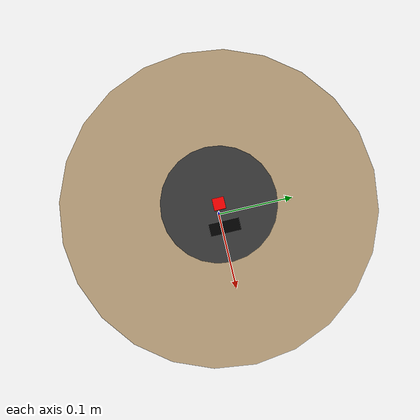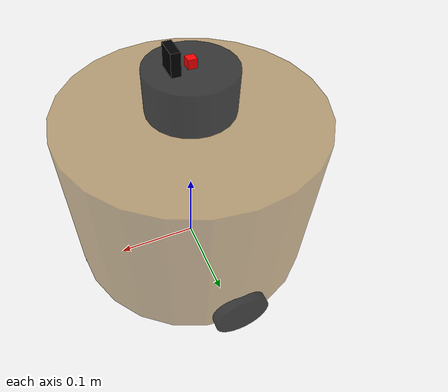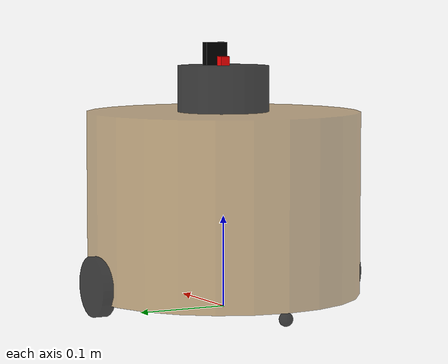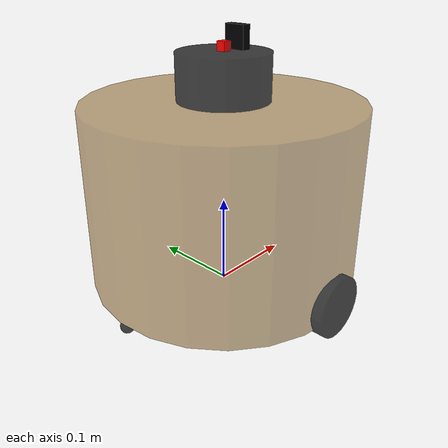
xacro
<robot name="diff_car_laser_3d"
  xmlns:xacro="http://wiki.ros.org/xacro">
  <xacro:include filename="head.xacro" />
  <xacro:include filename="base.xacro" />
  <xacro:include filename="laser.xacro" />
  <xacro:include filename="laser_3d_driver.xacro" />
  <xacro:include filename="imu.xacro" />
  <xacro:include filename="imu_driver.xacro" />
  <xacro:include filename="camera.xacro" />
  <xacro:include filename="camera_driver.xacro" />
  <xacro:include filename="imu_pose_gt.xacro" />
  <xacro:include filename="move.xacro" />
</robot>

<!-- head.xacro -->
<robot name="head"
  xmlns:xacro="http://wiki.ros.org/xacro">
  <!-- Macro for inertia matrix -->
  <xacro:macro name="sphere_inertial_matrix" params="m r">
    <inertial>
      <mass value="${m}" />
      <inertia ixx="${2*m*r*r/5}" ixy="0" ixz="0" iyy="${2*m*r*r/5}" iyz="0" izz="${2*m*r*r/5}" />
    </inertial>
  </xacro:macro>

  <xacro:macro name="cylinder_inertial_matrix" params="m r h">
    <inertial>
      <mass value="${m}" />
      <inertia ixx="${m*(3*r*r+h*h)/12}" ixy = "0" ixz = "0" iyy="${m*(3*r*r+h*h)/12}" iyz = "0" izz="${m*r*r/2}" />
    </inertial>
  </xacro:macro>

  <xacro:macro name="box_inertial_matrix" params="m l w h">
    <inertial>
      <mass value="${m}" />
      <inertia ixx="${m*(h*h + l*l)/12}" ixy = "0" ixz = "0" iyy="${m*(w*w + l*l)/12}" iyz= "0" izz="${m*(w*w + h*h)/12}" />
    </inertial>
  </xacro:macro>
</robot>

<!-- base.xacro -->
<robot name="base_car"
  xmlns:xacro="http://www.ros.org/wiki/xacro">
  <xacro:property name="PI" value="3.1415926"/>
  <material name="black">
    <color rgba="0.0 0.0 0.0 1.0" />
  </material>
  <xacro:property name="base_footprint_radius" value="0.001" />
  <xacro:property name="base_link_radius" value="0.15" />
  <xacro:property name="base_link_length" value="0.2" />
  <xacro:property name="earth_space" value="0.015" />
  <xacro:property name="base_link_m" value="0.5" />
  <link name="base_footprint">
    <visual>
      <geometry>
        <sphere radius="${base_footprint_radius}" />
      </geometry>
    </visual>
  </link>

  <link name="base_link">
    <visual>
      <geometry>
        <cylinder radius="${base_link_radius}" length="${base_link_length}" />
      </geometry>
      <origin xyz="0 0 0" rpy="0 0 0" />
      <material name="yellow">
        <color rgba="0.5 0.3 0.0 0.5" />
      </material>
    </visual>
    <collision>
      <geometry>
        <cylinder radius="${base_link_radius}" length="${base_link_length}" />
      </geometry>
      <origin xyz="0 0 0" rpy="0 0 0" />
    </collision>
    <xacro:cylinder_inertial_matrix m="${base_link_m}" r="${base_link_radius}" h="${base_link_length}" />
  </link>
  <joint name="base_link2base_footprint" type="fixed">
    <parent link="base_footprint" />
    <child link="base_link" />
    <origin xyz="0 0 ${earth_space + base_link_length / 2 }" />
  </joint>
  <gazebo reference="base_link">
    <material>Gazebo/Yellow</material>
  </gazebo>

  <xacro:property name="wheel_radius" value="0.0325" />
  <xacro:property name="wheel_length" value="0.015" />
  <xacro:property name="wheel_m" value="0.05" />
  <xacro:macro name="add_wheels" params="name flag">
    <link name="${name}_wheel">
      <visual>
        <geometry>
          <cylinder radius="${wheel_radius}" length="${wheel_length}" />
        </geometry>
        <origin xyz="0.0 0.0 0.0" rpy="${PI / 2} 0.0 0.0" />
        <material name="">
          <color rgba="0.0 0.0 0.0 0.75" />
        </material>
      </visual>
      <collision>
        <geometry>
          <cylinder radius="${wheel_radius}" length="${wheel_length}" />
        </geometry>
        <origin xyz="0.0 0.0 0.0" rpy="${PI / 2} 0.0 0.0" />
      </collision>
      <xacro:cylinder_inertial_matrix m="${wheel_m}" r="${wheel_radius}" h="${wheel_length}" />
    </link>
    <joint name="${name}_wheel2base_link" type="continuous">
      <parent link="base_link" />
      <child link="${name}_wheel" />
      <origin xyz="0 ${flag * base_link_radius} ${-(earth_space + base_link_length / 2 - wheel_radius) }" />
      <axis xyz="0 1 0" />
    </joint>
    <gazebo reference="${name}_wheel">
      <material>Gazebo/Red</material>
    </gazebo>
  </xacro:macro>
  <xacro:add_wheels name="left" flag="1" />
  <xacro:add_wheels name="right" flag="-1" />

  <xacro:property name="support_wheel_radius" value="0.0075" />
  <xacro:property name="support_wheel_m" value="0.03" />
  <xacro:macro name="add_support_wheel" params="name flag">
    <link name="${name}_wheel">
      <visual>
        <geometry>
          <sphere radius="${support_wheel_radius}" />
        </geometry>
        <origin xyz="0 0 0" rpy="0 0 0" />
        <material name="">
          <color rgba="0.0 0.0 0.0 0.75" />
        </material>
      </visual>
      <collision>
        <geometry>
          <sphere radius="${support_wheel_radius}" />
        </geometry>
        <origin xyz="0 0 0" rpy="0 0 0" />
      </collision>
      <xacro:sphere_inertial_matrix m="${support_wheel_m}" r="${support_wheel_radius}" />
    </link>
    <joint name="${name}_wheel2base_link" type="continuous">
      <parent link="base_link" />
      <child link="${name}_wheel" />
      <origin xyz="${flag * (base_link_radius - support_wheel_radius)} 0 ${-(base_link_length / 2 + earth_space / 2)}" />
      <axis xyz="1 1 1" />
    </joint>
    <gazebo reference="${name}_wheel">
      <material>Gazebo/Red</material>
    </gazebo>
  </xacro:macro>
  <xacro:add_support_wheel name="front" flag="1" />
  <xacro:add_support_wheel name="back" flag="-1" />
</robot>

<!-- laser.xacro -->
<robot name="laser"
  xmlns:xacro="http://wiki.ros.org/xacro">
  <xacro:property name="laser_length" value="0.05" />
  <xacro:property name="laser_radius" value="0.05" />
  <xacro:property name="laser_x" value="0.0" />
  <xacro:property name="laser_y" value="0.0" />
  <xacro:property name="laser_z" value="${base_link_length / 2 + laser_length / 2}" />
  <xacro:property name="laser_m" value="0.1" />
  <link name="laser">
    <visual>
      <geometry>
        <cylinder radius="${laser_radius}" length="${laser_length}" />
      </geometry>
      <origin xyz="0.0 0.0 0.0" rpy="0.0 0.0 0.0" />
      <material name="">
        <color rgba="0.0 0.0 0.0 0.75" />
      </material>
    </visual>
    <collision>
      <geometry>
        <cylinder radius="${laser_radius}" length="${laser_length}" />
      </geometry>
      <origin xyz="0.0 0.0 0.0" rpy="0.0 0.0 0.0" />
    </collision>
    <xacro:cylinder_inertial_matrix m="${laser_m}" r="${laser_radius}" h="${laser_length}" />
  </link>
  <joint name="laser2base_link" type="fixed">
    <parent link="base_link" />
    <child link="laser" />
    <origin xyz="${laser_x} ${laser_y} ${laser_z}" />
  </joint>
  <gazebo reference="laser">
    <material>Gazebo/Black</material>
  </gazebo>
</robot>

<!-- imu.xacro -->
<robot name="imu"
  xmlns:xacro="http://wiki.ros.org/xacro">
  <xacro:property name="imu_size" value="0.01" />
  <xacro:property name="imu_x" value="0" />
  <xacro:property name="imu_y" value="0" />
  <xacro:property name="imu_z" value="${laser_length / 2 + imu_size / 2}" />
  <xacro:property name="imu_m" value="0.01" />

  <link name="imu">
    <visual>
      <origin rpy="0 0 0" xyz="0 0 0" />
      <geometry>
        <box size="${imu_size} ${imu_size} ${imu_size}"/>
      </geometry>
      <material name= "red">
        <color rgba="1.0 0.0 0.0 1.0" />
      </material>
    </visual>
    <collision>
      <geometry>
        <box size="${imu_size} ${imu_size} ${imu_size}" />
      </geometry>
      <origin xyz="0.0 0.0 0" rpy="0.0 0.0 0.0" />
    </collision>
    <xacro:box_inertial_matrix m = "${imu_m}" l = "${imu_size}" w = "${imu_size}" h = "${imu_size}"/>
  </link>

  <joint name="imutolaser" type="fixed">
    <parent link="laser"/>
    <child link="imu"/>
    <origin xyz="${imu_x} ${imu_y} ${imu_z}" rpy="0 0 0" />
  </joint>

  <gazebo reference="imu">
    <material>Gazebo/Red</material>
  </gazebo>
</robot>

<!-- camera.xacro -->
<robot name="camera"
  xmlns:xacro="http://wiki.ros.org/xacro">
  <xacro:property name="camera_length" value="0.01" />
  <xacro:property name="camera_width" value="0.025" />
  <xacro:property name="camera_height" value="0.025" />
  <xacro:property name="camera_x" value="0.02" />
  <xacro:property name="camera_y" value="0.0" />
  <xacro:property name="camera_z" value="${laser_length / 2 + camera_height / 2}" />

  <link name="camera">
    <visual>
      <geometry>
        <box size="${camera_length} ${camera_width} ${camera_height}" />
      </geometry>
      <origin xyz="0.0 0.0 0.0" rpy="0.0 0.0 0.0" />
      <material name="black" />
    </visual>
  </link>

  <joint name="camera2laser" type="fixed">
    <parent link="laser" />
    <child link="camera" />
    <origin xyz="${camera_x} ${camera_y} ${camera_z}" />
  </joint>
</robot>
